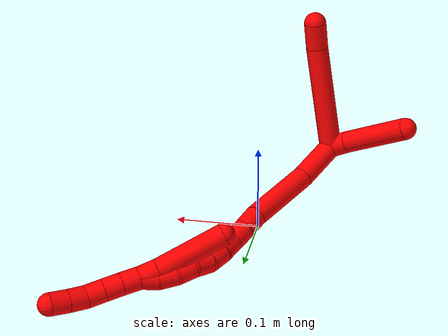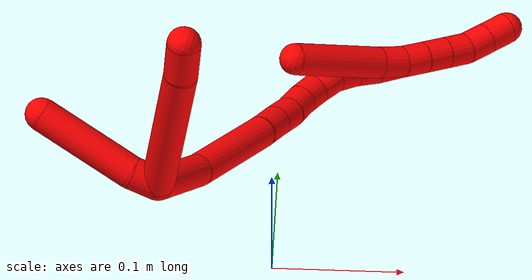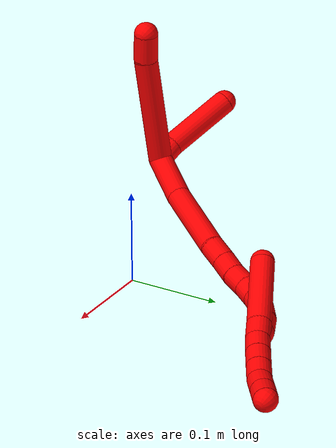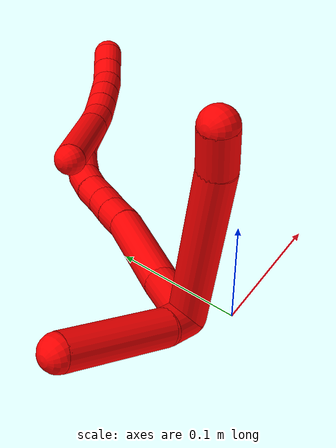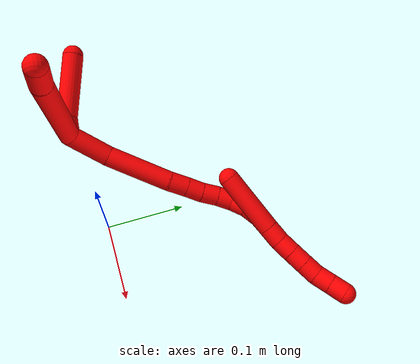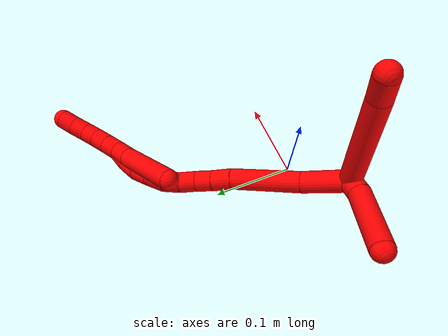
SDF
<sdf version="1.7">
 <world name="default">
  <model name="2">
   <static>0</static>
   <link name="2">
    <collision name="collision-cylinder-e_1_2_8">
     <pose>-0.049866 0.032482 -0.009066 -1.84299 -0.976168 1.22067</pose>
     <geometry><cylinder><radius>0.0125</radius><length>0.120398</length></cylinder></geometry>
     <surface>
      <friction><ode><mu>1.16</mu><mu2>1.16</mu2><slip1>0</slip1><slip2>0</slip2></ode></friction>
      <contact><ode><kp>1e+06</kp><kd>1</kd><max_vel>0</max_vel><min_depth>0.001</min_depth></ode></contact>
     </surface>
    </collision>
    <visual name="visual-cylinder-e_1_2_8">
     <pose>-0.049866 0.032482 -0.009066 -1.84299 -0.976168 1.22067</pose>
     <geometry><cylinder><radius>0.0125</radius><length>0.120398</length></cylinder></geometry>
     <material><ambient>1 0 0 1</ambient></material>
    </visual>
    <collision name="collision-cylinder-e_2_8_6">
     <pose>-0.110868 0.074091 -0.021562 -1.93022 -0.851611 1.15968</pose>
     <geometry><cylinder><radius>0.0125</radius><length>0.029602</length></cylinder></geometry>
     <surface>
      <friction><ode><mu>1.16</mu><mu2>1.16</mu2><slip1>0</slip1><slip2>0</slip2></ode></friction>
      <contact><ode><kp>1e+06</kp><kd>1</kd><max_vel>0</max_vel><min_depth>0.001</min_depth></ode></contact>
     </surface>
    </collision>
    <visual name="visual-cylinder-e_2_8_6">
     <pose>-0.110868 0.074091 -0.021562 -1.93022 -0.851611 1.15968</pose>
     <geometry><cylinder><radius>0.0125</radius><length>0.029602</length></cylinder></geometry>
     <material><ambient>1 0 0 1</ambient></material>
    </visual>
    <collision name="collision-cylinder-e_1_2_9">
     <pose>-0.0008 0.000596 -0.010749 -3.08623 -0.074178 1.8594</pose>
     <geometry><cylinder><radius>0.0125</radius><length>0.02159</length></cylinder></geometry>
     <surface>
      <friction><ode><mu>1.16</mu><mu2>1.16</mu2><slip1>0</slip1><slip2>0</slip2></ode></friction>
      <contact><ode><kp>1e+06</kp><kd>1</kd><max_vel>0</max_vel><min_depth>0.001</min_depth></ode></contact>
     </surface>
    </collision>
    <visual name="visual-cylinder-e_1_2_9">
     <pose>-0.0008 0.000596 -0.010749 -3.08623 -0.074178 1.8594</pose>
     <geometry><cylinder><radius>0.0125</radius><length>0.02159</length></cylinder></geometry>
     <material><ambient>1 0 0 1</ambient></material>
    </visual>
    <collision name="collision-cylinder-e_2_9_5">
     <pose>0.000216 0.010724 -0.059483 -2.89571 0.046336 -0.370758</pose>
     <geometry><cylinder><radius>0.0125</radius><length>0.07841</length></cylinder></geometry>
     <surface>
      <friction><ode><mu>1.16</mu><mu2>1.16</mu2><slip1>0</slip1><slip2>0</slip2></ode></friction>
      <contact><ode><kp>1e+06</kp><kd>1</kd><max_vel>0</max_vel><min_depth>0.001</min_depth></ode></contact>
     </surface>
    </collision>
    <visual name="visual-cylinder-e_2_9_5">
     <pose>0.000216 0.010724 -0.059483 -2.89571 0.046336 -0.370758</pose>
     <geometry><cylinder><radius>0.0125</radius><length>0.07841</length></cylinder></geometry>
     <material><ambient>1 0 0 1</ambient></material>
    </visual>
    <collision name="collision-cylinder-e_1_2_10">
     <pose>0.018277 0.012654 0.014366 -0.722138 0.762226 -0.300352</pose>
     <geometry><cylinder><radius>0.0125</radius><length>0.052937</length></cylinder></geometry>
     <surface>
      <friction><ode><mu>1.16</mu><mu2>1.16</mu2><slip1>0</slip1><slip2>0</slip2></ode></friction>
      <contact><ode><kp>1e+06</kp><kd>1</kd><max_vel>0</max_vel><min_depth>0.001</min_depth></ode></contact>
     </surface>
    </collision>
    <visual name="visual-cylinder-e_1_2_10">
     <pose>0.018277 0.012654 0.014366 -0.722138 0.762226 -0.300352</pose>
     <geometry><cylinder><radius>0.0125</radius><length>0.052937</length></cylinder></geometry>
     <material><ambient>1 0 0 1</ambient></material>
    </visual>
    <collision name="collision-cylinder-e_2_10_11">
     <pose>0.060689 0.050942 0.049173 -0.897629 0.63457 -0.313692</pose>
     <geometry><cylinder><radius>0.0125</radius><length>0.081421</length></cylinder></geometry>
     <surface>
      <friction><ode><mu>1.16</mu><mu2>1.16</mu2><slip1>0</slip1><slip2>0</slip2></ode></friction>
      <contact><ode><kp>1e+06</kp><kd>1</kd><max_vel>0</max_vel><min_depth>0.001</min_depth></ode></contact>
     </surface>
    </collision>
    <visual name="visual-cylinder-e_2_10_11">
     <pose>0.060689 0.050942 0.049173 -0.897629 0.63457 -0.313692</pose>
     <geometry><cylinder><radius>0.0125</radius><length>0.081421</length></cylinder></geometry>
     <material><ambient>1 0 0 1</ambient></material>
    </visual>
    <collision name="collision-cylinder-e_3_11_12">
     <pose>0.092897 0.083655 0.074447 -0.971757 0.755402 -0.413076</pose>
     <geometry><cylinder><radius>0.0125</radius><length>0.023551</length></cylinder></geometry>
     <surface>
      <friction><ode><mu>1.16</mu><mu2>1.16</mu2><slip1>0</slip1><slip2>0</slip2></ode></friction>
      <contact><ode><kp>1e+06</kp><kd>1</kd><max_vel>0</max_vel><min_depth>0.001</min_depth></ode></contact>
     </surface>
    </collision>
    <visual name="visual-cylinder-e_3_11_12">
     <pose>0.092897 0.083655 0.074447 -0.971757 0.755402 -0.413076</pose>
     <geometry><cylinder><radius>0.0125</radius><length>0.023551</length></cylinder></geometry>
     <material><ambient>1 0 0 1</ambient></material>
    </visual>
    <collision name="collision-cylinder-e_4_12_13">
     <pose>0.107755 0.097059 0.084016 -0.928004 0.709605 -0.366645</pose>
     <geometry><cylinder><radius>0.0125</radius><length>0.020829</length></cylinder></geometry>
     <surface>
      <friction><ode><mu>1.16</mu><mu2>1.16</mu2><slip1>0</slip1><slip2>0</slip2></ode></friction>
      <contact><ode><kp>1e+06</kp><kd>1</kd><max_vel>0</max_vel><min_depth>0.001</min_depth></ode></contact>
     </surface>
    </collision>
    <visual name="visual-cylinder-e_4_12_13">
     <pose>0.107755 0.097059 0.084016 -0.928004 0.709605 -0.366645</pose>
     <geometry><cylinder><radius>0.0125</radius><length>0.020829</length></cylinder></geometry>
     <material><ambient>1 0 0 1</ambient></material>
    </visual>
    <collision name="collision-cylinder-e_5_13_14">
     <pose>0.121229 0.110557 0.092376 -1.10306 0.694049 -0.437865</pose>
     <geometry><cylinder><radius>0.0125</radius><length>0.020913</length></cylinder></geometry>
     <surface>
      <friction><ode><mu>1.16</mu><mu2>1.16</mu2><slip1>0</slip1><slip2>0</slip2></ode></friction>
      <contact><ode><kp>1e+06</kp><kd>1</kd><max_vel>0</max_vel><min_depth>0.001</min_depth></ode></contact>
     </surface>
    </collision>
    <visual name="visual-cylinder-e_5_13_14">
     <pose>0.121229 0.110557 0.092376 -1.10306 0.694049 -0.437865</pose>
     <geometry><cylinder><radius>0.0125</radius><length>0.020913</length></cylinder></geometry>
     <material><ambient>1 0 0 1</ambient></material>
    </visual>
    <collision name="collision-cylinder-e_6_14_15">
     <pose>0.133505 0.124785 0.100584 -0.994563 0.586259 -0.324762</pose>
     <geometry><cylinder><radius>0.0125</radius><length>0.020199</length></cylinder></geometry>
     <surface>
      <friction><ode><mu>1.16</mu><mu2>1.16</mu2><slip1>0</slip1><slip2>0</slip2></ode></friction>
      <contact><ode><kp>1e+06</kp><kd>1</kd><max_vel>0</max_vel><min_depth>0.001</min_depth></ode></contact>
     </surface>
    </collision>
    <visual name="visual-cylinder-e_6_14_15">
     <pose>0.133505 0.124785 0.100584 -0.994563 0.586259 -0.324762</pose>
     <geometry><cylinder><radius>0.0125</radius><length>0.020199</length></cylinder></geometry>
     <material><ambient>1 0 0 1</ambient></material>
    </visual>
    <collision name="collision-cylinder-e_7_15_16">
     <pose>0.141887 0.139587 0.110937 -0.930681 0.281643 -0.142121</pose>
     <geometry><cylinder><radius>0.0125</radius><length>0.020113</length></cylinder></geometry>
     <surface>
      <friction><ode><mu>1.16</mu><mu2>1.16</mu2><slip1>0</slip1><slip2>0</slip2></ode></friction>
      <contact><ode><kp>1e+06</kp><kd>1</kd><max_vel>0</max_vel><min_depth>0.001</min_depth></ode></contact>
     </surface>
    </collision>
    <visual name="visual-cylinder-e_7_15_16">
     <pose>0.141887 0.139587 0.110937 -0.930681 0.281643 -0.142121</pose>
     <geometry><cylinder><radius>0.0125</radius><length>0.020113</length></cylinder></geometry>
     <material><ambient>1 0 0 1</ambient></material>
    </visual>
    <collision name="collision-cylinder-e_8_16_17">
     <pose>0.148383 0.153002 0.124084 -0.655095 0.378681 -0.130047</pose>
     <geometry><cylinder><radius>0.0125</radius><length>0.020023</length></cylinder></geometry>
     <surface>
      <friction><ode><mu>1.16</mu><mu2>1.16</mu2><slip1>0</slip1><slip2>0</slip2></ode></friction>
      <contact><ode><kp>1e+06</kp><kd>1</kd><max_vel>0</max_vel><min_depth>0.001</min_depth></ode></contact>
     </surface>
    </collision>
    <visual name="visual-cylinder-e_8_16_17">
     <pose>0.148383 0.153002 0.124084 -0.655095 0.378681 -0.130047</pose>
     <geometry><cylinder><radius>0.0125</radius><length>0.020023</length></cylinder></geometry>
     <material><ambient>1 0 0 1</ambient></material>
    </visual>
    <collision name="collision-cylinder-e_9_17_18">
     <pose>0.153904 0.16333 0.140123 -0.493618 0.182908 -0.046204</pose>
     <geometry><cylinder><radius>0.0125</radius><length>0.020007</length></cylinder></geometry>
     <surface>
      <friction><ode><mu>1.16</mu><mu2>1.16</mu2><slip1>0</slip1><slip2>0</slip2></ode></friction>
      <contact><ode><kp>1e+06</kp><kd>1</kd><max_vel>0</max_vel><min_depth>0.001</min_depth></ode></contact>
     </surface>
    </collision>
    <visual name="visual-cylinder-e_9_17_18">
     <pose>0.153904 0.16333 0.140123 -0.493618 0.182908 -0.046204</pose>
     <geometry><cylinder><radius>0.0125</radius><length>0.020007</length></cylinder></geometry>
     <material><ambient>1 0 0 1</ambient></material>
    </visual>
    <collision name="collision-cylinder-e_10_18_1">
     <pose>0.154975 0.173357 0.157195 -0.567994 -0.074911 0.021875</pose>
     <geometry><cylinder><radius>0.0125</radius><length>0.020008</length></cylinder></geometry>
     <surface>
      <friction><ode><mu>1.16</mu><mu2>1.16</mu2><slip1>0</slip1><slip2>0</slip2></ode></friction>
      <contact><ode><kp>1e+06</kp><kd>1</kd><max_vel>0</max_vel><min_depth>0.001</min_depth></ode></contact>
     </surface>
    </collision>
    <visual name="visual-cylinder-e_10_18_1">
     <pose>0.154975 0.173357 0.157195 -0.567994 -0.074911 0.021875</pose>
     <geometry><cylinder><radius>0.0125</radius><length>0.020008</length></cylinder></geometry>
     <material><ambient>1 0 0 1</ambient></material>
    </visual>
    <collision name="collision-cylinder-e_1_1_19">
     <pose>0.156972 0.183932 0.173688 -0.572308 0.278147 -0.082324</pose>
     <geometry><cylinder><radius>0.0125</radius><length>0.02</length></cylinder></geometry>
     <surface>
      <friction><ode><mu>1.16</mu><mu2>1.16</mu2><slip1>0</slip1><slip2>0</slip2></ode></friction>
      <contact><ode><kp>1e+06</kp><kd>1</kd><max_vel>0</max_vel><min_depth>0.001</min_depth></ode></contact>
     </surface>
    </collision>
    <visual name="visual-cylinder-e_1_1_19">
     <pose>0.156972 0.183932 0.173688 -0.572308 0.278147 -0.082324</pose>
     <geometry><cylinder><radius>0.0125</radius><length>0.02</length></cylinder></geometry>
     <material><ambient>1 0 0 1</ambient></material>
    </visual>
    <collision name="collision-cylinder-e_2_19_20">
     <pose>0.162627 0.19439 0.189769 -0.580962 0.295251 -0.08885</pose>
     <geometry><cylinder><radius>0.0125</radius><length>0.02</length></cylinder></geometry>
     <surface>
      <friction><ode><mu>1.16</mu><mu2>1.16</mu2><slip1>0</slip1><slip2>0</slip2></ode></friction>
      <contact><ode><kp>1e+06</kp><kd>1</kd><max_vel>0</max_vel><min_depth>0.001</min_depth></ode></contact>
     </surface>
    </collision>
    <visual name="visual-cylinder-e_2_19_20">
     <pose>0.162627 0.19439 0.189769 -0.580962 0.295251 -0.08885</pose>
     <geometry><cylinder><radius>0.0125</radius><length>0.02</length></cylinder></geometry>
     <material><ambient>1 0 0 1</ambient></material>
    </visual>
    <collision name="collision-cylinder-e_3_20_21">
     <pose>0.168551 0.204915 0.20571 -0.586184 0.306167 -0.093057</pose>
     <geometry><cylinder><radius>0.0125</radius><length>0.02</length></cylinder></geometry>
     <surface>
      <friction><ode><mu>1.16</mu><mu2>1.16</mu2><slip1>0</slip1><slip2>0</slip2></ode></friction>
      <contact><ode><kp>1e+06</kp><kd>1</kd><max_vel>0</max_vel><min_depth>0.001</min_depth></ode></contact>
     </surface>
    </collision>
    <visual name="visual-cylinder-e_3_20_21">
     <pose>0.168551 0.204915 0.20571 -0.586184 0.306167 -0.093057</pose>
     <geometry><cylinder><radius>0.0125</radius><length>0.02</length></cylinder></geometry>
     <material><ambient>1 0 0 1</ambient></material>
    </visual>
    <collision name="collision-cylinder-e_4_21_22">
     <pose>0.173586 0.217256 0.220434 -0.805957 0.203477 -0.08699</pose>
     <geometry><cylinder><radius>0.0125</radius><length>0.02</length></cylinder></geometry>
     <surface>
      <friction><ode><mu>1.16</mu><mu2>1.16</mu2><slip1>0</slip1><slip2>0</slip2></ode></friction>
      <contact><ode><kp>1e+06</kp><kd>1</kd><max_vel>0</max_vel><min_depth>0.001</min_depth></ode></contact>
     </surface>
    </collision>
    <visual name="visual-cylinder-e_4_21_22">
     <pose>0.173586 0.217256 0.220434 -0.805957 0.203477 -0.08699</pose>
     <geometry><cylinder><radius>0.0125</radius><length>0.02</length></cylinder></geometry>
     <material><ambient>1 0 0 1</ambient></material>
    </visual>
    <collision name="collision-cylinder-e_5_22_4">
     <pose>0.177168 0.231506 0.233995 -0.814332 0.156724 -0.067703</pose>
     <geometry><cylinder><radius>0.0125</radius><length>0.02</length></cylinder></geometry>
     <surface>
      <friction><ode><mu>1.16</mu><mu2>1.16</mu2><slip1>0</slip1><slip2>0</slip2></ode></friction>
      <contact><ode><kp>1e+06</kp><kd>1</kd><max_vel>0</max_vel><min_depth>0.001</min_depth></ode></contact>
     </surface>
    </collision>
    <visual name="visual-cylinder-e_5_22_4">
     <pose>0.177168 0.231506 0.233995 -0.814332 0.156724 -0.067703</pose>
     <geometry><cylinder><radius>0.0125</radius><length>0.02</length></cylinder></geometry>
     <material><ambient>1 0 0 1</ambient></material>
    </visual>
    <collision name="collision-cylinder-e_1_1_23">
     <pose>0.150693 0.174577 0.156395 2.7185 -0.336536 -1.33847</pose>
     <geometry><cylinder><radius>0.0125</radius><length>0.0214</length></cylinder></geometry>
     <surface>
      <friction><ode><mu>1.16</mu><mu2>1.16</mu2><slip1>0</slip1><slip2>0</slip2></ode></friction>
      <contact><ode><kp>1e+06</kp><kd>1</kd><max_vel>0</max_vel><min_depth>0.001</min_depth></ode></contact>
     </surface>
    </collision>
    <visual name="visual-cylinder-e_1_1_23">
     <pose>0.150693 0.174577 0.156395 2.7185 -0.336536 -1.33847</pose>
     <geometry><cylinder><radius>0.0125</radius><length>0.0214</length></cylinder></geometry>
     <material><ambient>1 0 0 1</ambient></material>
    </visual>
    <collision name="collision-cylinder-e_2_23_3">
     <pose>0.131339 0.157494 0.113617 2.77375 -0.414299 -1.69251</pose>
     <geometry><cylinder><radius>0.0125</radius><length>0.0786</length></cylinder></geometry>
     <surface>
      <friction><ode><mu>1.16</mu><mu2>1.16</mu2><slip1>0</slip1><slip2>0</slip2></ode></friction>
      <contact><ode><kp>1e+06</kp><kd>1</kd><max_vel>0</max_vel><min_depth>0.001</min_depth></ode></contact>
     </surface>
    </collision>
    <visual name="visual-cylinder-e_2_23_3">
     <pose>0.131339 0.157494 0.113617 2.77375 -0.414299 -1.69251</pose>
     <geometry><cylinder><radius>0.0125</radius><length>0.0786</length></cylinder></geometry>
     <material><ambient>1 0 0 1</ambient></material>
    </visual>
    <collision name="collision-sphere-3">
     <pose>0.115519 0.144557 0.080049 0 -0 0</pose>
     <geometry><sphere><radius>0.0125</radius></sphere></geometry>
     <surface>
      <friction><ode><mu>1.16</mu><mu2>1.16</mu2><slip1>0</slip1><slip2>0</slip2></ode></friction>
      <contact><ode><kp>1e+06</kp><kd>1</kd><max_vel>0</max_vel><min_depth>0.001</min_depth></ode></contact>
     </surface>
    </collision>
    <visual name="visual-sphere-3">
     <pose>0.115519 0.144557 0.080049 0 -0 0</pose>
     <geometry><sphere><radius>0.0125</radius></sphere></geometry>
     <material><ambient>1 0 0 1</ambient></material>
    </visual>
    <collision name="collision-sphere-23">
     <pose>0.14716 0.170431 0.147186 0 -0 0</pose>
     <geometry><sphere><radius>0.0125</radius></sphere></geometry>
     <surface>
      <friction><ode><mu>1.16</mu><mu2>1.16</mu2><slip1>0</slip1><slip2>0</slip2></ode></friction>
      <contact><ode><kp>1e+06</kp><kd>1</kd><max_vel>0</max_vel><min_depth>0.001</min_depth></ode></contact>
     </surface>
    </collision>
    <visual name="visual-sphere-23">
     <pose>0.14716 0.170431 0.147186 0 -0 0</pose>
     <geometry><sphere><radius>0.0125</radius></sphere></geometry>
     <material><ambient>1 0 0 1</ambient></material>
    </visual>
    <collision name="collision-sphere-4">
     <pose>0.178729 0.238689 0.240774 0 -0 0</pose>
     <geometry><sphere><radius>0.0125</radius></sphere></geometry>
     <surface>
      <friction><ode><mu>1.16</mu><mu2>1.16</mu2><slip1>0</slip1><slip2>0</slip2></ode></friction>
      <contact><ode><kp>1e+06</kp><kd>1</kd><max_vel>0</max_vel><min_depth>0.001</min_depth></ode></contact>
     </surface>
    </collision>
    <visual name="visual-sphere-4">
     <pose>0.178729 0.238689 0.240774 0 -0 0</pose>
     <geometry><sphere><radius>0.0125</radius></sphere></geometry>
     <material><ambient>1 0 0 1</ambient></material>
    </visual>
    <collision name="collision-sphere-22">
     <pose>0.175607 0.224322 0.227215 0 -0 0</pose>
     <geometry><sphere><radius>0.0125</radius></sphere></geometry>
     <surface>
      <friction><ode><mu>1.16</mu><mu2>1.16</mu2><slip1>0</slip1><slip2>0</slip2></ode></friction>
      <contact><ode><kp>1e+06</kp><kd>1</kd><max_vel>0</max_vel><min_depth>0.001</min_depth></ode></contact>
     </surface>
    </collision>
    <visual name="visual-sphere-22">
     <pose>0.175607 0.224322 0.227215 0 -0 0</pose>
     <geometry><sphere><radius>0.0125</radius></sphere></geometry>
     <material><ambient>1 0 0 1</ambient></material>
    </visual>
    <collision name="collision-sphere-21">
     <pose>0.171565 0.21019 0.213653 0 -0 0</pose>
     <geometry><sphere><radius>0.0125</radius></sphere></geometry>
     <surface>
      <friction><ode><mu>1.16</mu><mu2>1.16</mu2><slip1>0</slip1><slip2>0</slip2></ode></friction>
      <contact><ode><kp>1e+06</kp><kd>1</kd><max_vel>0</max_vel><min_depth>0.001</min_depth></ode></contact>
     </surface>
    </collision>
    <visual name="visual-sphere-21">
     <pose>0.171565 0.21019 0.213653 0 -0 0</pose>
     <geometry><sphere><radius>0.0125</radius></sphere></geometry>
     <material><ambient>1 0 0 1</ambient></material>
    </visual>
    <collision name="collision-sphere-20">
     <pose>0.165537 0.199641 0.197766 0 -0 0</pose>
     <geometry><sphere><radius>0.0125</radius></sphere></geometry>
     <surface>
      <friction><ode><mu>1.16</mu><mu2>1.16</mu2><slip1>0</slip1><slip2>0</slip2></ode></friction>
      <contact><ode><kp>1e+06</kp><kd>1</kd><max_vel>0</max_vel><min_depth>0.001</min_depth></ode></contact>
     </surface>
    </collision>
    <visual name="visual-sphere-20">
     <pose>0.165537 0.199641 0.197766 0 -0 0</pose>
     <geometry><sphere><radius>0.0125</radius></sphere></geometry>
     <material><ambient>1 0 0 1</ambient></material>
    </visual>
    <collision name="collision-sphere-10">
     <pose>0.036555 0.025309 0.028732 0 -0 0</pose>
     <geometry><sphere><radius>0.0125</radius></sphere></geometry>
     <surface>
      <friction><ode><mu>1.16</mu><mu2>1.16</mu2><slip1>0</slip1><slip2>0</slip2></ode></friction>
      <contact><ode><kp>1e+06</kp><kd>1</kd><max_vel>0</max_vel><min_depth>0.001</min_depth></ode></contact>
     </surface>
    </collision>
    <visual name="visual-sphere-10">
     <pose>0.036555 0.025309 0.028732 0 -0 0</pose>
     <geometry><sphere><radius>0.0125</radius></sphere></geometry>
     <material><ambient>1 0 0 1</ambient></material>
    </visual>
    <collision name="collision-sphere-5">
     <pose>0.002032 0.020257 -0.097468 0 -0 0</pose>
     <geometry><sphere><radius>0.0125</radius></sphere></geometry>
     <surface>
      <friction><ode><mu>1.16</mu><mu2>1.16</mu2><slip1>0</slip1><slip2>0</slip2></ode></friction>
      <contact><ode><kp>1e+06</kp><kd>1</kd><max_vel>0</max_vel><min_depth>0.001</min_depth></ode></contact>
     </surface>
    </collision>
    <visual name="visual-sphere-5">
     <pose>0.002032 0.020257 -0.097468 0 -0 0</pose>
     <geometry><sphere><radius>0.0125</radius></sphere></geometry>
     <material><ambient>1 0 0 1</ambient></material>
    </visual>
    <collision name="collision-sphere-6">
     <pose>-0.122003 0.083219 -0.024992 0 -0 0</pose>
     <geometry><sphere><radius>0.0125</radius></sphere></geometry>
     <surface>
      <friction><ode><mu>1.16</mu><mu2>1.16</mu2><slip1>0</slip1><slip2>0</slip2></ode></friction>
      <contact><ode><kp>1e+06</kp><kd>1</kd><max_vel>0</max_vel><min_depth>0.001</min_depth></ode></contact>
     </surface>
    </collision>
    <visual name="visual-sphere-6">
     <pose>-0.122003 0.083219 -0.024992 0 -0 0</pose>
     <geometry><sphere><radius>0.0125</radius></sphere></geometry>
     <material><ambient>1 0 0 1</ambient></material>
    </visual>
    <collision name="collision-sphere-9">
     <pose>-0.0016 0.001191 -0.021497 0 -0 0</pose>
     <geometry><sphere><radius>0.0125</radius></sphere></geometry>
     <surface>
      <friction><ode><mu>1.16</mu><mu2>1.16</mu2><slip1>0</slip1><slip2>0</slip2></ode></friction>
      <contact><ode><kp>1e+06</kp><kd>1</kd><max_vel>0</max_vel><min_depth>0.001</min_depth></ode></contact>
     </surface>
    </collision>
    <visual name="visual-sphere-9">
     <pose>-0.0016 0.001191 -0.021497 0 -0 0</pose>
     <geometry><sphere><radius>0.0125</radius></sphere></geometry>
     <material><ambient>1 0 0 1</ambient></material>
    </visual>
    <collision name="collision-sphere-2">
     <geometry><sphere><radius>0.0125</radius></sphere></geometry>
     <surface>
      <friction><ode><mu>1.16</mu><mu2>1.16</mu2><slip1>0</slip1><slip2>0</slip2></ode></friction>
      <contact><ode><kp>1e+06</kp><kd>1</kd><max_vel>0</max_vel><min_depth>0.001</min_depth></ode></contact>
     </surface>
    </collision>
    <visual name="visual-sphere-2">
     <geometry><sphere><radius>0.0125</radius></sphere></geometry>
     <material><ambient>1 0 0 1</ambient></material>
    </visual>
    <collision name="collision-sphere-19">
     <pose>0.159718 0.189139 0.181771 0 -0 0</pose>
     <geometry><sphere><radius>0.0125</radius></sphere></geometry>
     <surface>
      <friction><ode><mu>1.16</mu><mu2>1.16</mu2><slip1>0</slip1><slip2>0</slip2></ode></friction>
      <contact><ode><kp>1e+06</kp><kd>1</kd><max_vel>0</max_vel><min_depth>0.001</min_depth></ode></contact>
     </surface>
    </collision>
    <visual name="visual-sphere-19">
     <pose>0.159718 0.189139 0.181771 0 -0 0</pose>
     <geometry><sphere><radius>0.0125</radius></sphere></geometry>
     <material><ambient>1 0 0 1</ambient></material>
    </visual>
    <collision name="collision-sphere-8">
     <pose>-0.099733 0.064964 -0.018133 0 -0 0</pose>
     <geometry><sphere><radius>0.0125</radius></sphere></geometry>
     <surface>
      <friction><ode><mu>1.16</mu><mu2>1.16</mu2><slip1>0</slip1><slip2>0</slip2></ode></friction>
      <contact><ode><kp>1e+06</kp><kd>1</kd><max_vel>0</max_vel><min_depth>0.001</min_depth></ode></contact>
     </surface>
    </collision>
    <visual name="visual-sphere-8">
     <pose>-0.099733 0.064964 -0.018133 0 -0 0</pose>
     <geometry><sphere><radius>0.0125</radius></sphere></geometry>
     <material><ambient>1 0 0 1</ambient></material>
    </visual>
    <collision name="collision-sphere-11">
     <pose>0.084824 0.076575 0.069613 0 -0 0</pose>
     <geometry><sphere><radius>0.0125</radius></sphere></geometry>
     <surface>
      <friction><ode><mu>1.16</mu><mu2>1.16</mu2><slip1>0</slip1><slip2>0</slip2></ode></friction>
      <contact><ode><kp>1e+06</kp><kd>1</kd><max_vel>0</max_vel><min_depth>0.001</min_depth></ode></contact>
     </surface>
    </collision>
    <visual name="visual-sphere-11">
     <pose>0.084824 0.076575 0.069613 0 -0 0</pose>
     <geometry><sphere><radius>0.0125</radius></sphere></geometry>
     <material><ambient>1 0 0 1</ambient></material>
    </visual>
    <collision name="collision-sphere-12">
     <pose>0.10097 0.090735 0.07928 0 -0 0</pose>
     <geometry><sphere><radius>0.0125</radius></sphere></geometry>
     <surface>
      <friction><ode><mu>1.16</mu><mu2>1.16</mu2><slip1>0</slip1><slip2>0</slip2></ode></friction>
      <contact><ode><kp>1e+06</kp><kd>1</kd><max_vel>0</max_vel><min_depth>0.001</min_depth></ode></contact>
     </surface>
    </collision>
    <visual name="visual-sphere-12">
     <pose>0.10097 0.090735 0.07928 0 -0 0</pose>
     <geometry><sphere><radius>0.0125</radius></sphere></geometry>
     <material><ambient>1 0 0 1</ambient></material>
    </visual>
    <collision name="collision-sphere-13">
     <pose>0.11454 0.103382 0.088752 0 -0 0</pose>
     <geometry><sphere><radius>0.0125</radius></sphere></geometry>
     <surface>
      <friction><ode><mu>1.16</mu><mu2>1.16</mu2><slip1>0</slip1><slip2>0</slip2></ode></friction>
      <contact><ode><kp>1e+06</kp><kd>1</kd><max_vel>0</max_vel><min_depth>0.001</min_depth></ode></contact>
     </surface>
    </collision>
    <visual name="visual-sphere-13">
     <pose>0.11454 0.103382 0.088752 0 -0 0</pose>
     <geometry><sphere><radius>0.0125</radius></sphere></geometry>
     <material><ambient>1 0 0 1</ambient></material>
    </visual>
    <collision name="collision-sphere-14">
     <pose>0.127917 0.117731 0.096 0 -0 0</pose>
     <geometry><sphere><radius>0.0125</radius></sphere></geometry>
     <surface>
      <friction><ode><mu>1.16</mu><mu2>1.16</mu2><slip1>0</slip1><slip2>0</slip2></ode></friction>
      <contact><ode><kp>1e+06</kp><kd>1</kd><max_vel>0</max_vel><min_depth>0.001</min_depth></ode></contact>
     </surface>
    </collision>
    <visual name="visual-sphere-14">
     <pose>0.127917 0.117731 0.096 0 -0 0</pose>
     <geometry><sphere><radius>0.0125</radius></sphere></geometry>
     <material><ambient>1 0 0 1</ambient></material>
    </visual>
    <collision name="collision-sphere-15">
     <pose>0.139092 0.13184 0.105168 0 -0 0</pose>
     <geometry><sphere><radius>0.0125</radius></sphere></geometry>
     <surface>
      <friction><ode><mu>1.16</mu><mu2>1.16</mu2><slip1>0</slip1><slip2>0</slip2></ode></friction>
      <contact><ode><kp>1e+06</kp><kd>1</kd><max_vel>0</max_vel><min_depth>0.001</min_depth></ode></contact>
     </surface>
    </collision>
    <visual name="visual-sphere-15">
     <pose>0.139092 0.13184 0.105168 0 -0 0</pose>
     <geometry><sphere><radius>0.0125</radius></sphere></geometry>
     <material><ambient>1 0 0 1</ambient></material>
    </visual>
    <collision name="collision-sphere-16">
     <pose>0.144682 0.147335 0.116707 0 -0 0</pose>
     <geometry><sphere><radius>0.0125</radius></sphere></geometry>
     <surface>
      <friction><ode><mu>1.16</mu><mu2>1.16</mu2><slip1>0</slip1><slip2>0</slip2></ode></friction>
      <contact><ode><kp>1e+06</kp><kd>1</kd><max_vel>0</max_vel><min_depth>0.001</min_depth></ode></contact>
     </surface>
    </collision>
    <visual name="visual-sphere-16">
     <pose>0.144682 0.147335 0.116707 0 -0 0</pose>
     <geometry><sphere><radius>0.0125</radius></sphere></geometry>
     <material><ambient>1 0 0 1</ambient></material>
    </visual>
    <collision name="collision-sphere-17">
     <pose>0.152085 0.158669 0.13146 0 -0 0</pose>
     <geometry><sphere><radius>0.0125</radius></sphere></geometry>
     <surface>
      <friction><ode><mu>1.16</mu><mu2>1.16</mu2><slip1>0</slip1><slip2>0</slip2></ode></friction>
      <contact><ode><kp>1e+06</kp><kd>1</kd><max_vel>0</max_vel><min_depth>0.001</min_depth></ode></contact>
     </surface>
    </collision>
    <visual name="visual-sphere-17">
     <pose>0.152085 0.158669 0.13146 0 -0 0</pose>
     <geometry><sphere><radius>0.0125</radius></sphere></geometry>
     <material><ambient>1 0 0 1</ambient></material>
    </visual>
    <collision name="collision-sphere-18">
     <pose>0.155724 0.167991 0.148785 0 -0 0</pose>
     <geometry><sphere><radius>0.0125</radius></sphere></geometry>
     <surface>
      <friction><ode><mu>1.16</mu><mu2>1.16</mu2><slip1>0</slip1><slip2>0</slip2></ode></friction>
      <contact><ode><kp>1e+06</kp><kd>1</kd><max_vel>0</max_vel><min_depth>0.001</min_depth></ode></contact>
     </surface>
    </collision>
    <visual name="visual-sphere-18">
     <pose>0.155724 0.167991 0.148785 0 -0 0</pose>
     <geometry><sphere><radius>0.0125</radius></sphere></geometry>
     <material><ambient>1 0 0 1</ambient></material>
    </visual>
    <collision name="collision-sphere-1">
     <pose>0.154226 0.178724 0.165604 0 -0 0</pose>
     <geometry><sphere><radius>0.0125</radius></sphere></geometry>
     <surface>
      <friction><ode><mu>1.16</mu><mu2>1.16</mu2><slip1>0</slip1><slip2>0</slip2></ode></friction>
      <contact><ode><kp>1e+06</kp><kd>1</kd><max_vel>0</max_vel><min_depth>0.001</min_depth></ode></contact>
     </surface>
    </collision>
    <visual name="visual-sphere-1">
     <pose>0.154226 0.178724 0.165604 0 -0 0</pose>
     <geometry><sphere><radius>0.0125</radius></sphere></geometry>
     <material><ambient>1 0 0 1</ambient></material>
    </visual>
    <inertial>
     <pose>0.064824 0.093283 0.065358 0 -0 0</pose>
     <mass>0.75</mass>
     <inertia>
      <ixx>0.000139</ixx>
      <ixy>0</ixy>
      <ixz>0</ixz>
      <iyy>0.000168</iyy>
      <iyz>0</iyz>
      <izz>-2.8e-05</izz>
     </inertia>
    </inertial>
   </link>
   <pose>-0.083188 -0.014355 0.104174 2.10055 0.900456 1.87638</pose>
  </model>
 </world>
</sdf>
